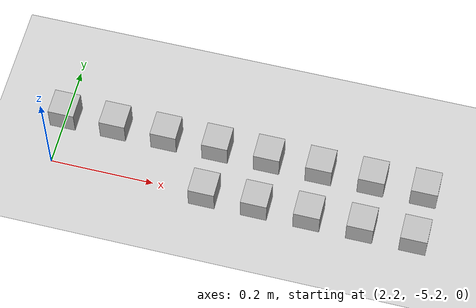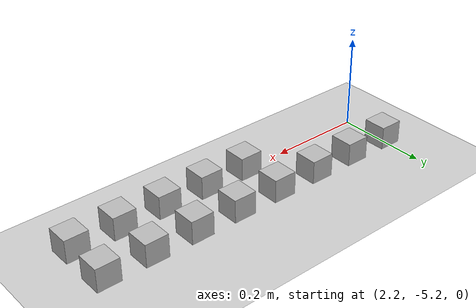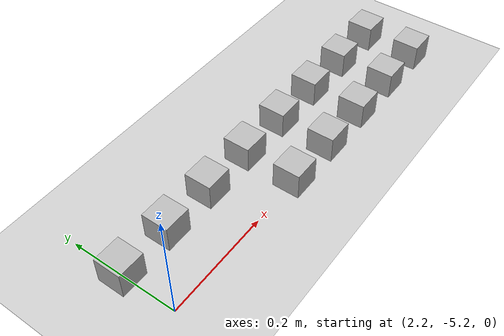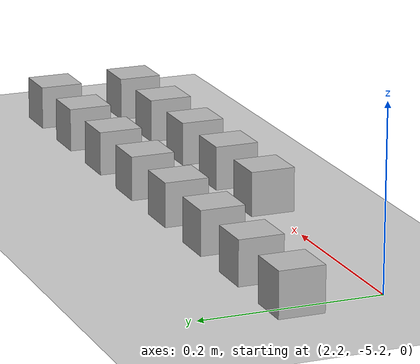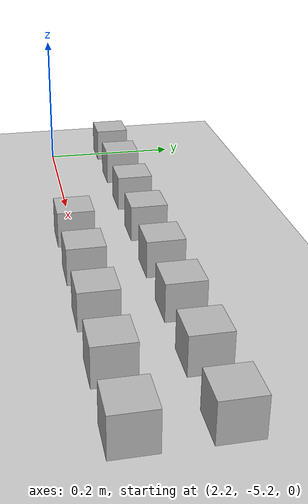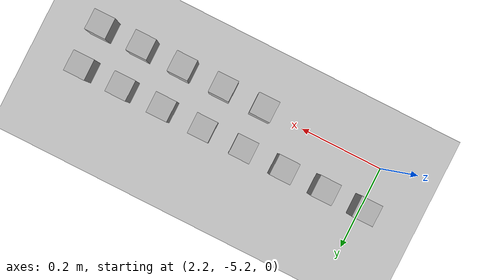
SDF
<sdf version="1.6">
 <world name="default">
  <model name="ground_plane">
   <static>1</static>
   <link name="link">
    <collision name="collision">
     <geometry><plane><normal>0 0 1</normal><size>100 100</size></plane></geometry>
     <surface><friction><ode><mu>100</mu><mu2>50</mu2></ode></friction></surface>
    </collision>
    <visual name="visual">
     <cast_shadows>0</cast_shadows>
     <geometry><plane><normal>0 0 1</normal><size>100 100</size></plane></geometry>
     <material>
      <script><uri>file://media/materials/scripts/gazebo.material</uri><name>Gazebo/Grey</name></script>
     </material>
    </visual>
   </link>
  </model>
  <model name="at179">
   <static>0</static>
   <link name="link">
    <inertial>
     <mass>0.01</mass>
     <inertia><ixx>4e-05</ixx><ixy>0</ixy><ixz>0</ixz><iyy>4e-05</iyy><iyz>0</iyz><izz>4e-05</izz></inertia>
    </inertial>
    <visual name="visual">
     <geometry><box><size>0.05 0.05 0.05</size></box></geometry>
     <material>
      <script>
       <uri>model://at0/materials/scripts</uri>
       <uri>model://at0/materials/textures</uri>
       <name>at0/Diffuse</name>
      </script>
     </material>
    </visual>
    <collision name="collision">
     <geometry><box><size>0.05 0.05 0.05</size></box></geometry>
     <surface><friction><ode><mu>0.8</mu><mu2>0.7</mu2></ode></friction></surface>
    </collision>
   </link>
   <pose>2.5 -5.2 0.025 0 -0 0</pose>
  </model>
  <model name="at180">
   <static>0</static>
   <link name="link">
    <inertial>
     <mass>0.01</mass>
     <inertia><ixx>4e-05</ixx><ixy>0</ixy><ixz>0</ixz><iyy>4e-05</iyy><iyz>0</iyz><izz>4e-05</izz></inertia>
    </inertial>
    <visual name="visual">
     <geometry><box><size>0.05 0.05 0.05</size></box></geometry>
     <material>
      <script>
       <uri>model://at0/materials/scripts</uri>
       <uri>model://at0/materials/textures</uri>
       <name>at0/Diffuse</name>
      </script>
     </material>
    </visual>
    <collision name="collision">
     <geometry><box><size>0.05 0.05 0.05</size></box></geometry>
     <surface><friction><ode><mu>0.8</mu><mu2>0.7</mu2></ode></friction></surface>
    </collision>
   </link>
   <pose>2.6 -5.2 0.025 0 -0 0</pose>
  </model>
  <model name="at181">
   <static>0</static>
   <link name="link">
    <inertial>
     <mass>0.01</mass>
     <inertia><ixx>4e-05</ixx><ixy>0</ixy><ixz>0</ixz><iyy>4e-05</iyy><iyz>0</iyz><izz>4e-05</izz></inertia>
    </inertial>
    <visual name="visual">
     <geometry><box><size>0.05 0.05 0.05</size></box></geometry>
     <material>
      <script>
       <uri>model://at0/materials/scripts</uri>
       <uri>model://at0/materials/textures</uri>
       <name>at0/Diffuse</name>
      </script>
     </material>
    </visual>
    <collision name="collision">
     <geometry><box><size>0.05 0.05 0.05</size></box></geometry>
     <surface><friction><ode><mu>0.8</mu><mu2>0.7</mu2></ode></friction></surface>
    </collision>
   </link>
   <pose>2.7 -5.2 0.025 0 -0 0</pose>
  </model>
  <model name="at182">
   <static>0</static>
   <link name="link">
    <inertial>
     <mass>0.01</mass>
     <inertia><ixx>4e-05</ixx><ixy>0</ixy><ixz>0</ixz><iyy>4e-05</iyy><iyz>0</iyz><izz>4e-05</izz></inertia>
    </inertial>
    <visual name="visual">
     <geometry><box><size>0.05 0.05 0.05</size></box></geometry>
     <material>
      <script>
       <uri>model://at0/materials/scripts</uri>
       <uri>model://at0/materials/textures</uri>
       <name>at0/Diffuse</name>
      </script>
     </material>
    </visual>
    <collision name="collision">
     <geometry><box><size>0.05 0.05 0.05</size></box></geometry>
     <surface><friction><ode><mu>0.8</mu><mu2>0.7</mu2></ode></friction></surface>
    </collision>
   </link>
   <pose>2.8 -5.2 0.025 0 -0 0</pose>
  </model>
  <model name="at183">
   <static>0</static>
   <link name="link">
    <inertial>
     <mass>0.01</mass>
     <inertia><ixx>4e-05</ixx><ixy>0</ixy><ixz>0</ixz><iyy>4e-05</iyy><iyz>0</iyz><izz>4e-05</izz></inertia>
    </inertial>
    <visual name="visual">
     <geometry><box><size>0.05 0.05 0.05</size></box></geometry>
     <material>
      <script>
       <uri>model://at0/materials/scripts</uri>
       <uri>model://at0/materials/textures</uri>
       <name>at0/Diffuse</name>
      </script>
     </material>
    </visual>
    <collision name="collision">
     <geometry><box><size>0.05 0.05 0.05</size></box></geometry>
     <surface><friction><ode><mu>0.8</mu><mu2>0.7</mu2></ode></friction></surface>
    </collision>
   </link>
   <pose>2.9 -5.2 0.025 0 -0 0</pose>
  </model>
  <model name="at184">
   <static>0</static>
   <link name="link">
    <inertial>
     <mass>0.01</mass>
     <inertia><ixx>4e-05</ixx><ixy>0</ixy><ixz>0</ixz><iyy>4e-05</iyy><iyz>0</iyz><izz>4e-05</izz></inertia>
    </inertial>
    <visual name="visual">
     <geometry><box><size>0.05 0.05 0.05</size></box></geometry>
     <material>
      <script>
       <uri>model://at0/materials/scripts</uri>
       <uri>model://at0/materials/textures</uri>
       <name>at0/Diffuse</name>
      </script>
     </material>
    </visual>
    <collision name="collision">
     <geometry><box><size>0.05 0.05 0.05</size></box></geometry>
     <surface><friction><ode><mu>0.8</mu><mu2>0.7</mu2></ode></friction></surface>
    </collision>
   </link>
   <pose>2.2 -5.1 0.025 0 -0 0</pose>
  </model>
  <model name="at185">
   <static>0</static>
   <link name="link">
    <inertial>
     <mass>0.01</mass>
     <inertia><ixx>4e-05</ixx><ixy>0</ixy><ixz>0</ixz><iyy>4e-05</iyy><iyz>0</iyz><izz>4e-05</izz></inertia>
    </inertial>
    <visual name="visual">
     <geometry><box><size>0.05 0.05 0.05</size></box></geometry>
     <material>
      <script>
       <uri>model://at0/materials/scripts</uri>
       <uri>model://at0/materials/textures</uri>
       <name>at0/Diffuse</name>
      </script>
     </material>
    </visual>
    <collision name="collision">
     <geometry><box><size>0.05 0.05 0.05</size></box></geometry>
     <surface><friction><ode><mu>0.8</mu><mu2>0.7</mu2></ode></friction></surface>
    </collision>
   </link>
   <pose>2.3 -5.1 0.025 0 -0 0</pose>
  </model>
  <model name="at186">
   <static>0</static>
   <link name="link">
    <inertial>
     <mass>0.01</mass>
     <inertia><ixx>4e-05</ixx><ixy>0</ixy><ixz>0</ixz><iyy>4e-05</iyy><iyz>0</iyz><izz>4e-05</izz></inertia>
    </inertial>
    <visual name="visual">
     <geometry><box><size>0.05 0.05 0.05</size></box></geometry>
     <material>
      <script>
       <uri>model://at0/materials/scripts</uri>
       <uri>model://at0/materials/textures</uri>
       <name>at0/Diffuse</name>
      </script>
     </material>
    </visual>
    <collision name="collision">
     <geometry><box><size>0.05 0.05 0.05</size></box></geometry>
     <surface><friction><ode><mu>0.8</mu><mu2>0.7</mu2></ode></friction></surface>
    </collision>
   </link>
   <pose>2.4 -5.1 0.025 0 -0 0</pose>
  </model>
  <model name="at187">
   <static>0</static>
   <link name="link">
    <inertial>
     <mass>0.01</mass>
     <inertia><ixx>4e-05</ixx><ixy>0</ixy><ixz>0</ixz><iyy>4e-05</iyy><iyz>0</iyz><izz>4e-05</izz></inertia>
    </inertial>
    <visual name="visual">
     <geometry><box><size>0.05 0.05 0.05</size></box></geometry>
     <material>
      <script>
       <uri>model://at0/materials/scripts</uri>
       <uri>model://at0/materials/textures</uri>
       <name>at0/Diffuse</name>
      </script>
     </material>
    </visual>
    <collision name="collision">
     <geometry><box><size>0.05 0.05 0.05</size></box></geometry>
     <surface><friction><ode><mu>0.8</mu><mu2>0.7</mu2></ode></friction></surface>
    </collision>
   </link>
   <pose>2.5 -5.1 0.025 0 -0 0</pose>
  </model>
  <model name="at188">
   <static>0</static>
   <link name="link">
    <inertial>
     <mass>0.01</mass>
     <inertia><ixx>4e-05</ixx><ixy>0</ixy><ixz>0</ixz><iyy>4e-05</iyy><iyz>0</iyz><izz>4e-05</izz></inertia>
    </inertial>
    <visual name="visual">
     <geometry><box><size>0.05 0.05 0.05</size></box></geometry>
     <material>
      <script>
       <uri>model://at0/materials/scripts</uri>
       <uri>model://at0/materials/textures</uri>
       <name>at0/Diffuse</name>
      </script>
     </material>
    </visual>
    <collision name="collision">
     <geometry><box><size>0.05 0.05 0.05</size></box></geometry>
     <surface><friction><ode><mu>0.8</mu><mu2>0.7</mu2></ode></friction></surface>
    </collision>
   </link>
   <pose>2.6 -5.1 0.025 0 -0 0</pose>
  </model>
  <model name="at189">
   <static>0</static>
   <link name="link">
    <inertial>
     <mass>0.01</mass>
     <inertia><ixx>4e-05</ixx><ixy>0</ixy><ixz>0</ixz><iyy>4e-05</iyy><iyz>0</iyz><izz>4e-05</izz></inertia>
    </inertial>
    <visual name="visual">
     <geometry><box><size>0.05 0.05 0.05</size></box></geometry>
     <material>
      <script>
       <uri>model://at0/materials/scripts</uri>
       <uri>model://at0/materials/textures</uri>
       <name>at0/Diffuse</name>
      </script>
     </material>
    </visual>
    <collision name="collision">
     <geometry><box><size>0.05 0.05 0.05</size></box></geometry>
     <surface><friction><ode><mu>0.8</mu><mu2>0.7</mu2></ode></friction></surface>
    </collision>
   </link>
   <pose>2.7 -5.1 0.025 0 -0 0</pose>
  </model>
  <model name="at190">
   <static>0</static>
   <link name="link">
    <inertial>
     <mass>0.01</mass>
     <inertia><ixx>4e-05</ixx><ixy>0</ixy><ixz>0</ixz><iyy>4e-05</iyy><iyz>0</iyz><izz>4e-05</izz></inertia>
    </inertial>
    <visual name="visual">
     <geometry><box><size>0.05 0.05 0.05</size></box></geometry>
     <material>
      <script>
       <uri>model://at0/materials/scripts</uri>
       <uri>model://at0/materials/textures</uri>
       <name>at0/Diffuse</name>
      </script>
     </material>
    </visual>
    <collision name="collision">
     <geometry><box><size>0.05 0.05 0.05</size></box></geometry>
     <surface><friction><ode><mu>0.8</mu><mu2>0.7</mu2></ode></friction></surface>
    </collision>
   </link>
   <pose>2.8 -5.1 0.025 0 -0 0</pose>
  </model>
  <model name="at191">
   <static>0</static>
   <link name="link">
    <inertial>
     <mass>0.01</mass>
     <inertia><ixx>4e-05</ixx><ixy>0</ixy><ixz>0</ixz><iyy>4e-05</iyy><iyz>0</iyz><izz>4e-05</izz></inertia>
    </inertial>
    <visual name="visual">
     <geometry><box><size>0.05 0.05 0.05</size></box></geometry>
     <material>
      <script>
       <uri>model://at0/materials/scripts</uri>
       <uri>model://at0/materials/textures</uri>
       <name>at0/Diffuse</name>
      </script>
     </material>
    </visual>
    <collision name="collision">
     <geometry><box><size>0.05 0.05 0.05</size></box></geometry>
     <surface><friction><ode><mu>0.8</mu><mu2>0.7</mu2></ode></friction></surface>
    </collision>
   </link>
   <pose>2.9 -5.1 0.025 0 -0 0</pose>
  </model>
 </world>
</sdf>
